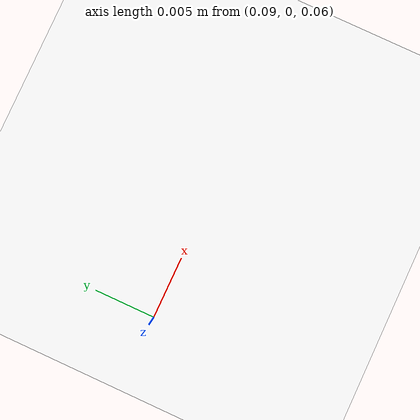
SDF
<?xml version="1.0" ?>
<sdf version="1.5">
  <model name="land_pad">
    <pose>0.0 0.0 0.06 0 0 0</pose>
    <link name="link">
        <inertial>
        <pose>0 0 0 0 0 0</pose>
        <mass>10.0</mass>
        <inertia>
          <ixx>0.01</ixx>
          <ixy>0</ixy>
          <ixz>0</ixz>
          <iyy>0.01</iyy>
          <iyz>0</iyz>
          <izz>0.01</izz>
        </inertia>
      </inertial>
      <kinematic>true</kinematic>
      <collision name="collision">
        <geometry>
          <box>
            <size>0.5 0.5 0.01</size>
          </box>
        </geometry>
        <surface>
          <friction>
            <ode>
              <mu>1.0</mu>
              <mu2>1.0</mu2>
              <fdir1>1 0 0</fdir1>
            </ode>
          </friction>
          <contact>
            <ode>
              <kp>1e+12</kp>
              <kd>1</kd>
              <max_vel>10</max_vel>
              <min_depth>0.003</min_depth>
            </ode>
          </contact>
        </surface>
      </collision>
      <visual name="visual">
        <geometry>
          <box>
            <size>0.5 0.5 0.02</size>
          </box>
        </geometry>
        <!-- Aruco marker as the land pad structure -->
        <material>
          <script>
            <uri>model://land_pad/materials/scripts</uri>
            <uri>model://land_pad/materials/textures</uri>
            <name>ArucoVisualMarker0/Marker</name>
          </script>
          <ambient>1 1 1 1</ambient>
          <diffuse>1 1 1 1</diffuse>
          <specular>0 0 0 1</specular>
          <emissive>1 1 1 0</emissive>
          <shader type='vertex'>
            <normal_map>__default__</normal_map>
          </shader>
        </material>
      </visual>
    </link>
    <!-- Add a GPS on the land pad -->
    <include>
      <uri>model://gps</uri>
      <pose>0.1 0 0 0 0 0</pose>
      <name>gps_target</name>
    </include>
    <joint name='gps_target_joint' type='fixed'>
      <child>gps_target::link</child>
      <parent>link</parent>
    </joint>

    <plugin name="random" filename="libgazebo_random_velocity_plugin.so">

      <!-- Name of the link in this model that receives the velocity -->
      <link>link</link>

      <!-- Initial velocity that is applied to the link -->
      <initial_velocity>0 0 0</initial_velocity>

      <!-- Scaling factor that is used to compute a new velocity -->
      <velocity_factor>0.0</velocity_factor>

      <!-- Time, in seconds, between new velocities -->
      <update_period>20</update_period>

      <!-- Clamp the Z velocity value to zero. You can also clamp x and
          y values -->
      <min_z>0</min_z>
      <max_z>0</max_z>
    </plugin>
  </model>
</sdf>

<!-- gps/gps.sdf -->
<sdf version="1.6">
  <model name="gps">
    <link name="link">
      <pose>0 0 0 0 0 0</pose>
      <inertial>
        <pose>0 0 0 0 0 0</pose>
        <mass>0.015</mass>
        <inertia>
          <ixx>1e-05</ixx>
          <ixy>0</ixy>
          <ixz>0</ixz>
          <iyy>1e-05</iyy>
          <iyz>0</iyz>
          <izz>1e-05</izz>
        </inertia>
      </inertial>
      <visual name="visual">
        <geometry>
          <cylinder>
            <radius>0.01</radius>
            <length>0.002</length>
          </cylinder>
        </geometry>
        <material>
          <script>
            <name>Gazebo/Black</name>
          </script>
        </material>
      </visual>
      <sensor name="gps" type="gps">
        <pose>0 0 0 0 0 0</pose>
        <update_rate>5.0</update_rate>
        <always_on>true</always_on>
        <visualize>false</visualize>
        <!-- GpsSensor noise currently not used -->
        <plugin name="gps_plugin" filename="libgazebo_geocoordinate_gps_plugin.so">
          <robotNamespace></robotNamespace>
          <gpsNoise>true</gpsNoise>
          <gpsXYRandomWalk>2.0</gpsXYRandomWalk>
          <gpsZRandomWalk>4.0</gpsZRandomWalk>
          <gpsXYNoiseDensity>2.0e-4</gpsXYNoiseDensity>
          <gpsZNoiseDensity>4.0e-4</gpsZNoiseDensity>
          <gpsVXYNoiseDensity>0.2</gpsVXYNoiseDensity>
          <gpsVZNoiseDensity>0.4</gpsVZNoiseDensity>
        </plugin>
      </sensor>
    </link>
  </model>
</sdf>
